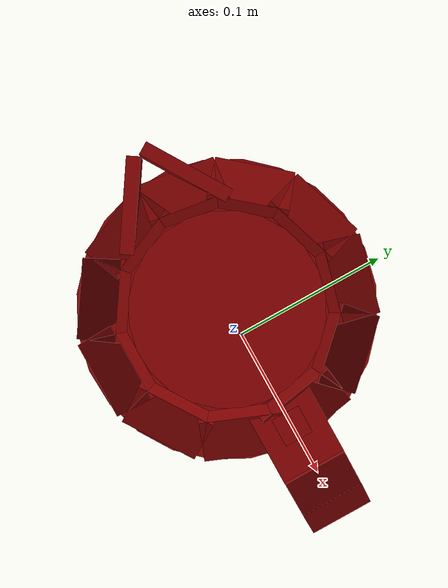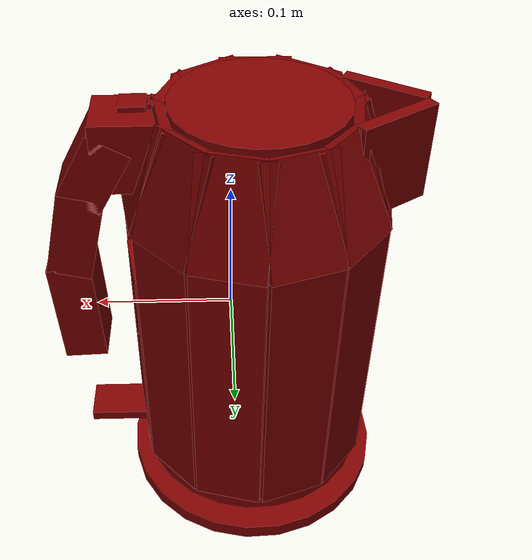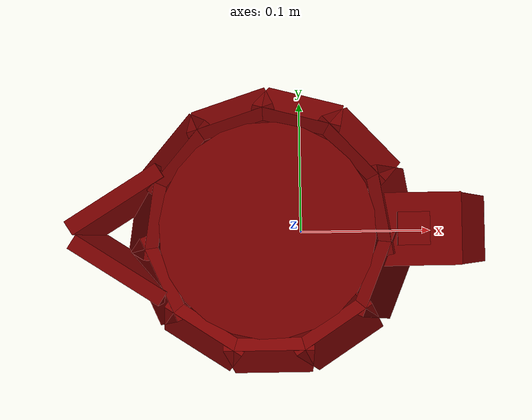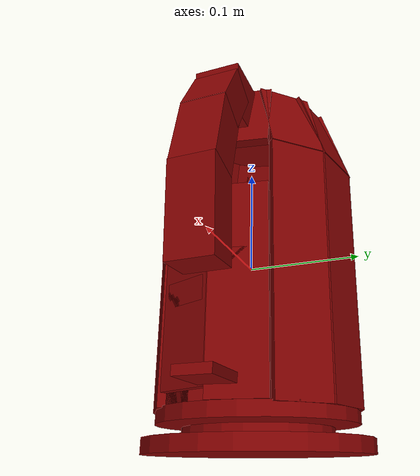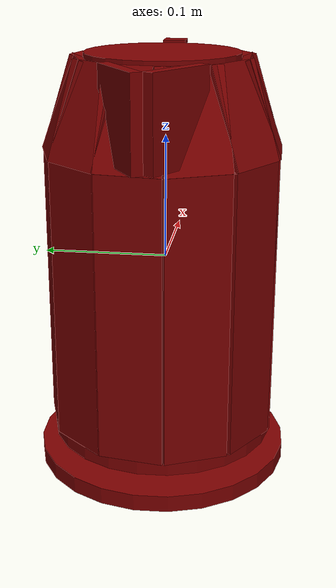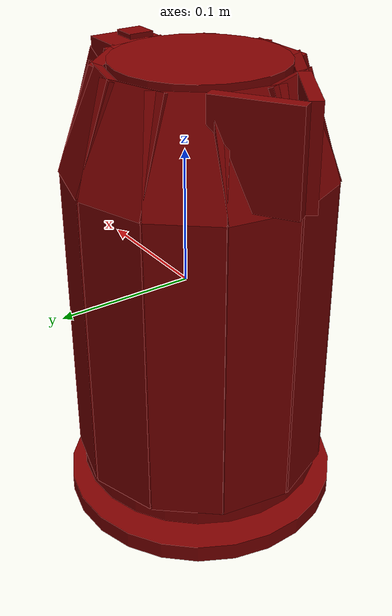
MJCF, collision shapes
<?xml version='1.0' encoding='UTF-8'?>
<mujoco model="model">
  <compiler angle="radian"/>
  <asset>
    <mesh file="visuals/Body001.obj" name="Body001_vis"/>
    <mesh file="visuals/Button001.obj" name="Button001_vis"/>
    <mesh file="visuals/Handle001.obj" name="Handle001_vis"/>
    <mesh file="visuals/Handle001_Clear.obj" name="Handle001_Clear_vis"/>
    <mesh file="visuals/Lever001.obj" name="Lever001_vis"/>
    <mesh file="visuals/Lid001.obj" name="Lid001_vis"/>
    <texture file="visuals/T_BC001.png" name="Body001_material" type="2d"/>
    <material name="Body001_material" rgba="1 1 1 1.0" texture="Body001_material" shininess="0.5" specular="0.3103448502657381"/>
    <texture file="visuals/T_BC001.png" name="Handle001_material" type="2d"/>
    <material name="Handle001_material" rgba="1 1 1 1.0" texture="Handle001_material" shininess="0.5" specular="0.3103448502657381"/>
    <texture file="visuals/T_BC001.png" name="Button001_material" type="2d"/>
    <material name="Button001_material" rgba="1 1 1 1.0" texture="Button001_material" shininess="0.5" specular="0.3103448502657381"/>
    <texture file="visuals/T_BC001.png" name="Handle001_Clear_material" type="2d"/>
    <material name="Handle001_Clear_material" rgba="1 1 1 0.699999988079071" texture="Handle001_Clear_material" shininess="0.5" specular="0.3103448502657381"/>
    <texture file="visuals/T_BC001.png" name="Lever001_material" type="2d"/>
    <material name="Lever001_material" rgba="1 1 1 1.0" texture="Lever001_material" shininess="0.5" specular="0.3103448502657381"/>
    <texture file="visuals/T_BC001.png" name="Lid001_material" type="2d"/>
    <material name="Lid001_material" rgba="1 1 1 1.0" texture="Lid001_material" shininess="0.5" specular="0.3103448502657381"/>
  </asset>
  <default>
    <default class="visual">
      <geom conaffinity="0" contype="0" group="1" type="mesh"/>
    </default>
    <default class="collision">
      <geom group="0" rgba="0.5 0 0 0.5"/>
    </default>
    <default class="spawn">
      <geom group="0" rgba="1 1 1 0.5" contype="0" conaffinity="0"/>
      <site group="0" rgba="1 1 1 0.5"/>
    </default>
    <default class="region">
      <geom group="1" conaffinity="0" contype="0" rgba="0 1 0 0"/>
    </default>
  </default>
  <worldbody>
    <body>
      <body name="object">
        <geom mesh="Body001_vis" type="mesh" solimp="0.998 0.998 0.001" solref="0.001 1" density="100" friction="0.95 0.3 0.1" class="visual" material="Body001_material"/>
        <geom class="collision" type="cylinder" pos="-0.018557 0.000015 -0.158091" size="0.10137950628995895 0.006578653585165739" quat="0.6755902171134949 0.0 -0.0 -0.7372773289680481"/>
        <geom class="collision" type="cylinder" pos="-0.018557 0.000015 -0.151136" size="0.0671452134847641 0.008745289407670498" quat="0.6755902171134949 0.0 -0.0 -0.7372773289680481"/>
        <body name="Handle001">
          <joint axis="0.0 0.0 1.0" pos="0.000000 -0.000264 0.012266" limited="true" name="Handle001_joint" range="0.0 0.05" type="slide" damping="1" frictionloss="1" armature=".01" stiffness="0.05"/>
          <geom mesh="Handle001_vis" type="mesh" solimp="0.998 0.998 0.001" solref="0.001 1" density="100" friction="0.95 0.3 0.1" class="visual" material="Handle001_material"/>
          <geom class="collision" type="cylinder" pos="-0.017879 0.000015 -0.134137" size="0.08986473083496094 0.006378372199833393" quat="0.6755902171134949 0.0 -0.0 -0.7372773289680481"/>
          <geom class="collision" type="box" pos="0.065919 -0.000354 0.135775" size="0.023217780515551567 0.02032623067498207 0.02463190071284771" quat="1.0 0.0 0.0 0.0"/>
          <geom class="collision" type="box" pos="0.088895 -0.000354 0.123831" size="0.020326241850852966 0.015789516270160675 0.024822961539030075" quat="0.6846578121185303 -0.17675898969173431 -0.17675898969173431 0.6846577525138855"/>
          <geom class="collision" type="box" pos="0.106544 -0.000354 0.075148" size="0.020326241850852966 0.015789518132805824 0.03254279866814613" quat="0.7023094296455383 -0.08222831785678864 -0.08222831785678864 0.7023093700408936"/>
          <geom class="collision" type="box" pos="0.112554 -0.000354 0.006040" size="0.020326241850852966 0.015789518132805824 0.041692495346069336" quat="0.7069078683853149 0.01677246205508709 0.01677246205508709 0.7069078087806702"/>
          <geom class="collision" type="box" pos="-0.018563 -0.086798 -0.018072" size="0.025027861818671227 0.0035533199552446604 0.11131692677736282" quat="1.0 0.0 0.0 0.0"/>
          <geom class="collision" type="box" pos="-0.018563 -0.075022 0.127385" size="0.0035533239133656025 0.025027872994542122 0.038026414811611176" quat="0.6968826055526733 -0.11981042474508286 0.11981041729450226 0.6968827843666077"/>
          <geom class="collision" type="box" pos="-0.018563 -0.075022 0.127385" size="0.0035533239133656025 0.025027872994542122 0.038026414811611176" quat="0.6968826055526733 -0.11981042474508286 0.11981041729450226 0.6968827843666077"/>
          <geom class="collision" type="box" pos="-0.018563 -0.086798 -0.018072" size="0.025027865543961525 0.0035533204209059477 0.11131694167852402" quat="1.0 0.0 0.0 0.0"/>
          <geom class="collision" type="box" pos="-0.065941 -0.072450 -0.018072" size="0.0035533164627850056 0.025027872994542122 0.1113169714808464" quat="0.8797891139984131 0.0 0.0 0.47536423802375793"/>
          <geom class="collision" type="box" pos="-0.059487 -0.062600 0.127385" size="0.0035533232148736715 0.025027871131896973 0.03802641108632088" quat="0.8670681715011597 -0.08054453134536743 0.14906927943229675 0.4684908986091614"/>
          <geom class="collision" type="box" pos="-0.086784 -0.030073 0.127385" size="0.0035533239133656025 0.025027871131896973 0.038026414811611176" quat="0.9644036293029785 -0.03490365296602249 0.16580356657505035 0.2030186951160431"/>
          <geom class="collision" type="box" pos="-0.097560 -0.034820 -0.018072" size="0.003553316229954362 0.025027871131896973 0.1113169714808464" quat="0.9785525798797607 0.0 0.0 0.20599718391895294"/>
          <geom class="collision" type="box" pos="-0.103802 0.012637 -0.018072" size="0.0035533166956156492 0.02502787485718727 0.1113169714808464" quat="0.9973598718643188 0.0 0.0 -0.07261717319488525"/>
          <geom class="collision" type="box" pos="-0.092150 0.010931 0.127385" size="0.003553324146196246 0.02502787485718727 0.03802641108632088" quat="0.9829390048980713 0.012304075993597507 0.16899020969867706 -0.07156713306903839"/>
          <geom class="collision" type="box" pos="-0.075273 0.048084 0.127385" size="0.003553323680534959 0.025027872994542122 0.03802641108632088" quat="0.9261136054992676 0.05794724076986313 0.15922057628631592 -0.33705273270606995"/>
          <geom class="collision" type="box" pos="-0.084294 0.055653 -0.018072" size="0.0035533164627850056 0.025027872994542122 0.1113169714808464" quat="0.9397007822990417 0.0 0.0 -0.3419977128505707"/>
          <geom class="collision" type="box" pos="-0.044927 0.082081 -0.018072" size="0.0035533164627850056 0.025027872994542122 0.1113169714808464" quat="0.8100860118865967 0.0 0.0 -0.5863111019134521"/>
          <geom class="collision" type="box" pos="-0.041247 0.070894 0.127385" size="0.003553323680534959 0.02502787485718727 0.038026414811611176" quat="0.7983729839324951 0.09934307634830475 0.13725894689559937 -0.5778334736824036"/>
          <geom class="collision" type="box" pos="0.000852 0.072059 0.127385" size="0.003553324146196246 0.025027871131896973 0.038026414811611176" quat="0.6033421754837036 0.1339755356311798 0.10372861474752426 -0.7792747616767883"/>
          <geom class="collision" type="box" pos="0.003801 0.083460 -0.018072" size="0.003553316229954362 0.025027871131896973 0.1113169714808464" quat="0.6121939420700073 0.0 0.0 -0.7907076478004456"/>
          <geom class="collision" type="box" pos="0.045088 0.058782 -0.018072" size="0.0035533164627850056 0.025027872994542122 0.1113169714808464" quat="0.3683755695819855 0.0 0.0 -0.9296770691871643"/>
          <geom class="collision" type="box" pos="0.036507 0.050716 0.127385" size="0.0035533239133656025 0.025027871131896973 0.03802641108632088" quat="0.3630492091178894 0.15752212703227997 0.06241663917899132 -0.9162347912788391"/>
          <geom class="collision" type="box" pos="0.055528 0.012151 0.127385" size="0.003553323680534959 0.025027872994542122 0.03802641108632088" quat="0.0842772051692009 0.16881680488586426 0.01448921486735344 -0.9819309115409851"/>
          <geom class="collision" type="box" pos="0.067132 0.014158 -0.018072" size="0.0035533164627850056 0.010918714106082916 0.011245767585933208" quat="0.0855136513710022 0.0 0.0 -0.9963369965553284"/>
          <geom class="collision" type="box" pos="0.062032 -0.032680 -0.018072" size="0.0035533164627850056 0.025027872994542122 0.09980691969394684" quat="0.18889543414115906 0.0 0.0 0.9819971919059753"/>
          <geom class="collision" type="box" pos="0.051096 -0.028312 0.127385" size="0.0035533239133656025 0.02502787485718727 0.03802641108632088" quat="0.18616418540477753 -0.16638709604740143 0.03200596198439598 0.9677984714508057"/>
          <geom class="collision" type="box" pos="0.022751 -0.062803 0.127385" size="0.0035533239133656025 0.025027872994542122 0.03802641108632088" quat="0.46658357977867126 -0.14924590289592743 0.08021660894155502 0.8680960536003113"/>
          <geom class="collision" type="box" pos="0.029248 -0.072625 -0.018072" size="0.0035533164627850056 0.025027872994542122 0.1113169714808464" quat="0.4734286963939667 0.0 0.0 0.8808321356773376"/>
          <geom class="collision" type="box" pos="-0.101059 -0.020515 0.131520" size="0.004404331091791391 0.029513796791434288 0.03415337949991226" quat="0.8788750767707825 0.002036256482824683 0.0037515568546950817 0.4770328998565674"/>
          <geom class="collision" type="box" pos="-0.102413 0.018355 0.131532" size="0.004404331091791391 0.029513802379369736 0.03415337949991226" quat="0.48492613434791565 0.0037330733612179756 0.0020699503365904093 0.8745446801185608"/>
          <geom class="collision" type="box" pos="0.067132 0.014158 -0.038159" size="0.0035533164627850056 0.025027872994542122 0.08973562717437744" quat="0.0855136513710022 0.0 0.0 -0.9963369965553284"/>
          <geom class="collision" type="box" pos="0.062032 -0.032680 -0.038245" size="0.0035533164627850056 0.02104211039841175 0.010718152858316898" quat="0.18889543414115906 0.0 0.0 0.9819971919059753"/>
          <body name="Button001">
            <joint axis="0.0 0.0 -1.0" pos="0.061446 -0.000000 0.165510" limited="true" name="Button001_joint" range="0.0 0.0015" type="slide" damping="1" frictionloss="1" armature=".01" stiffness="0.2" springref="-0.2"/>
            <geom mesh="Button001_vis" type="mesh" solimp="0.998 0.998 0.001" solref="0.001 1" density="100" friction="0.95 0.3 0.1" class="visual" material="Button001_material"/>
            <geom class="collision" type="box" pos="0.061471 -0.000060 0.165558" size="0.008809546940028667 0.009039090014994144 0.0017189487116411328" quat="1.0 0.0 0.0 0.0"/>
          </body>
          <body name="Handle001_Clear">
            <geom mesh="Handle001_Clear_vis" type="mesh" solimp="0.998 0.998 0.001" solref="0.001 1" density="100" friction="0.95 0.3 0.1" class="visual" material="Handle001_Clear_material"/>
            <geom class="collision" type="box" pos="-0.018568 -0.087836 -0.001072" size="0.0005408229189924896 0.0028736924286931753 0.07884011417627335" quat="0.6755902171134949 0.0 -0.0 -0.7372773289680481"/>
          </body>
          <body name="Lever001">
            <joint axis="0.0 0.0 -1.0" pos="0.071634 0.000000 -0.112714" limited="true" name="Lever001_joint" range="0.0 0.01" type="slide" damping="1" frictionloss="1" armature=".01" stiffness="0.5" springref="-0.5"/>
            <geom mesh="Lever001_vis" type="mesh" solimp="0.998 0.998 0.001" solref="0.001 1" density="100" friction="0.95 0.3 0.1" class="visual" material="Lever001_material"/>
            <geom class="collision" type="box" pos="0.087471 -0.000037 -0.112505" size="0.027515793219208717 0.01574653945863247 0.0040934160351753235" quat="1.0 0.0 0.0 0.0"/>
          </body>
          <body name="Lid001">
            <joint axis="0.0 1.0 0.0" pos="0.040200 -0.000022 0.163668" limited="true" name="Lid001_joint" range="0.0 1.5707963267948966" type="hinge" damping="1" frictionloss="1" armature=".01" stiffness="0.05"/>
            <geom mesh="Lid001_vis" type="mesh" solimp="0.998 0.998 0.001" solref="0.001 1" density="100" friction="0.95 0.3 0.1" class="visual" material="Lid001_material"/>
            <geom class="collision" type="cylinder" pos="-0.018228 -0.000013 0.162834" size="0.059366803616285324 0.003852392081171274" quat="0.6755902171134949 0.0 -0.0 -0.7372773289680481"/>
          </body>
        </body>
        <geom class="region" name="reg_main" type="box" pos="0.0 0.0 -5.000000000005e-07" size="0.127219 0.099277 0.16721550000000002"/>
      </body>
    </body>
  </worldbody>
  <actuator>
    <motor name="Handle001_joint_actuator" joint="Handle001_joint" gear="60"/>
    <motor name="Button001_joint_actuator" joint="Button001_joint" gear="0.5"/>
    <motor name="Lever001_joint_actuator" joint="Lever001_joint" gear="0.5"/>
    <motor name="Lid001_joint_actuator" joint="Lid001_joint" gear="5"/>
  </actuator>
</mujoco>
